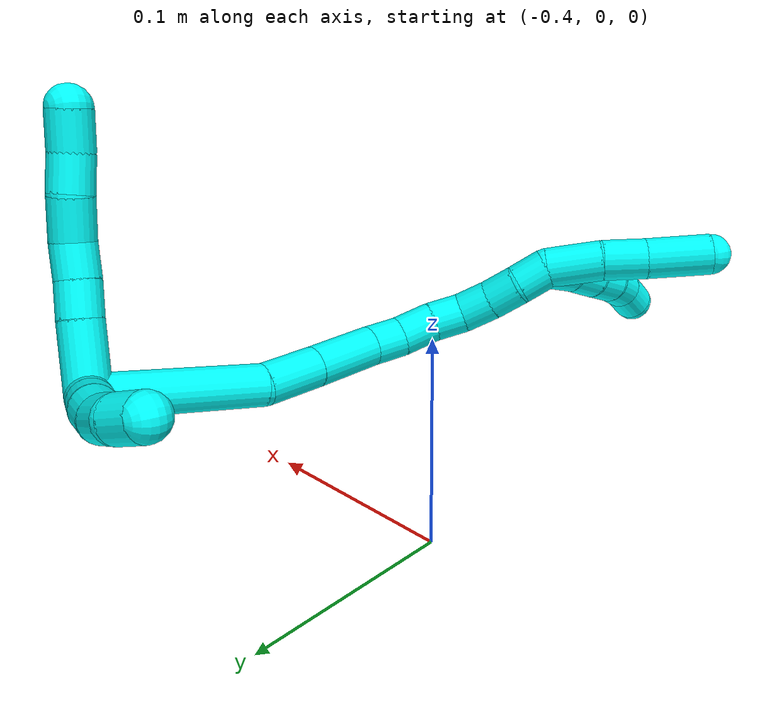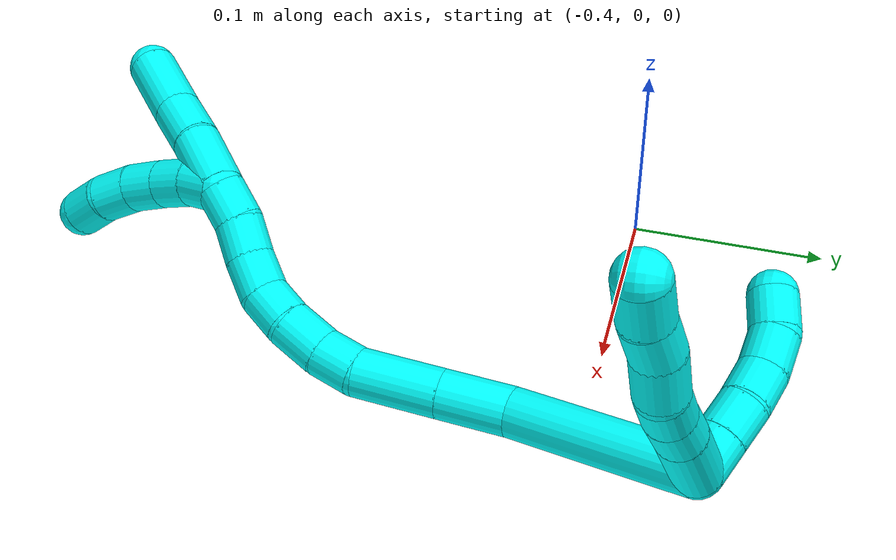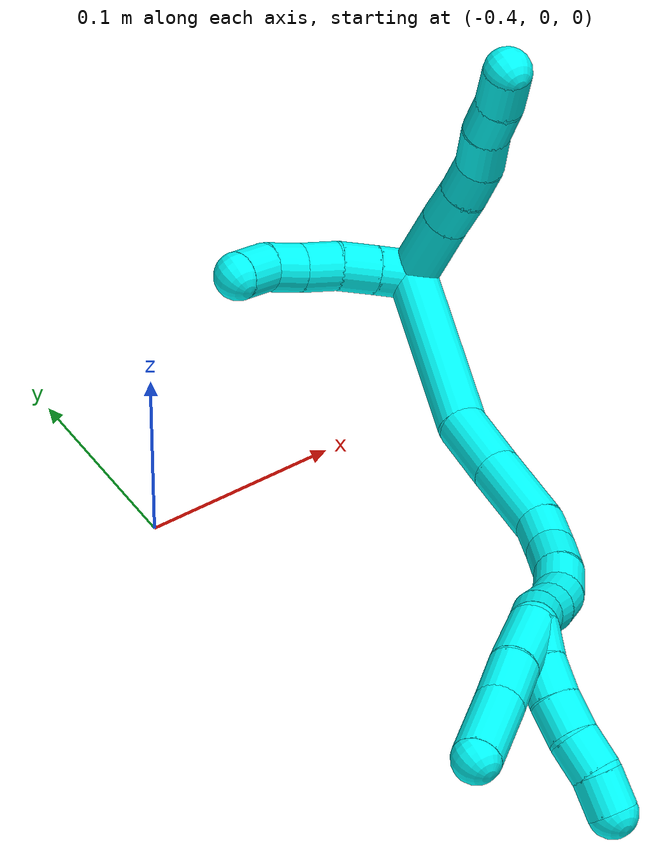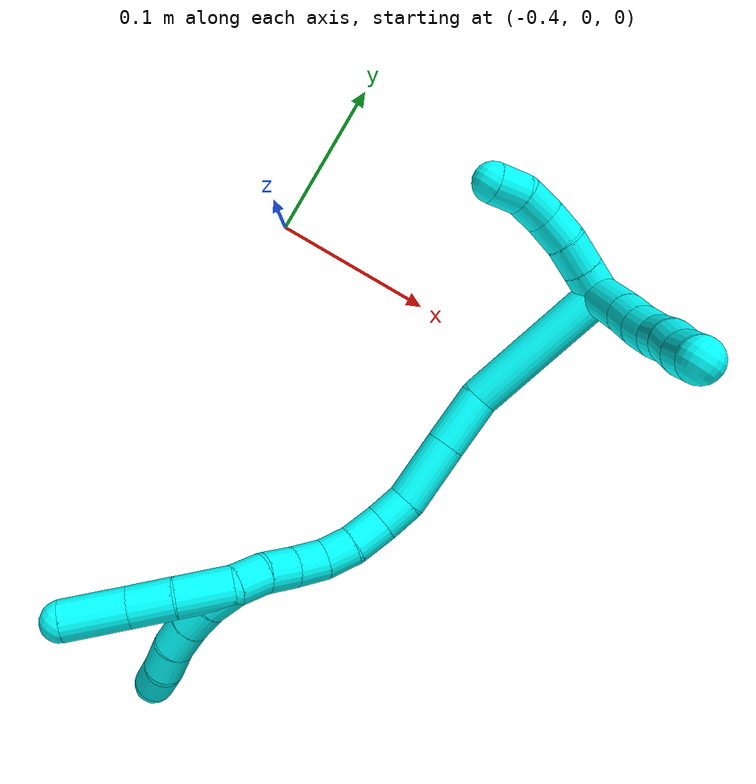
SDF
<sdf version="1.7">
 <world name="default">
  <model name="3">
   <static>0</static>
   <link name="3">
    <collision name="collision-cylinder-e_1_2_8">
     <pose>-0.006355 -0.019159 0.001639 1.48547 -0.3192 -0.293453</pose>
     <geometry><cylinder><radius>0.0125</radius><length>0.040503</length></cylinder></geometry>
     <surface>
      <friction><ode><mu>1.16</mu><mu2>1.16</mu2><slip1>0</slip1><slip2>0</slip2></ode></friction>
      <contact><ode><kp>1e+06</kp><kd>1</kd><max_vel>0</max_vel><min_depth>0.001</min_depth></ode></contact>
     </surface>
    </collision>
    <visual name="visual-cylinder-e_1_2_8">
     <pose>-0.006355 -0.019159 0.001639 1.48547 -0.3192 -0.293453</pose>
     <geometry><cylinder><radius>0.0125</radius><length>0.040503</length></cylinder></geometry>
     <material><ambient>0.003922 1 0.996078 1</ambient></material>
    </visual>
    <collision name="collision-cylinder-e_2_8_9">
     <pose>-0.015907 -0.048005 0.004541 1.44105 -0.316203 -0.278155</pose>
     <geometry><cylinder><radius>0.0125</radius><length>0.02056</length></cylinder></geometry>
     <surface>
      <friction><ode><mu>1.16</mu><mu2>1.16</mu2><slip1>0</slip1><slip2>0</slip2></ode></friction>
      <contact><ode><kp>1e+06</kp><kd>1</kd><max_vel>0</max_vel><min_depth>0.001</min_depth></ode></contact>
     </surface>
    </collision>
    <visual name="visual-cylinder-e_2_8_9">
     <pose>-0.015907 -0.048005 0.004541 1.44105 -0.316203 -0.278155</pose>
     <geometry><cylinder><radius>0.0125</radius><length>0.02056</length></cylinder></geometry>
     <material><ambient>0.003922 1 0.996078 1</ambient></material>
    </visual>
    <collision name="collision-cylinder-e_3_9_10">
     <pose>-0.022124 -0.067374 0.006317 1.51803 -0.302036 -0.286722</pose>
     <geometry><cylinder><radius>0.0125</radius><length>0.020308</length></cylinder></geometry>
     <surface>
      <friction><ode><mu>1.16</mu><mu2>1.16</mu2><slip1>0</slip1><slip2>0</slip2></ode></friction>
      <contact><ode><kp>1e+06</kp><kd>1</kd><max_vel>0</max_vel><min_depth>0.001</min_depth></ode></contact>
     </surface>
    </collision>
    <visual name="visual-cylinder-e_3_9_10">
     <pose>-0.022124 -0.067374 0.006317 1.51803 -0.302036 -0.286722</pose>
     <geometry><cylinder><radius>0.0125</radius><length>0.020308</length></cylinder></geometry>
     <material><ambient>0.003922 1 0.996078 1</ambient></material>
    </visual>
    <collision name="collision-cylinder-e_4_10_11">
     <pose>-0.02535 -0.089274 0.006866 1.56772 -0.016847 -0.016795</pose>
     <geometry><cylinder><radius>0.0125</radius><length>0.024441</length></cylinder></geometry>
     <surface>
      <friction><ode><mu>1.16</mu><mu2>1.16</mu2><slip1>0</slip1><slip2>0</slip2></ode></friction>
      <contact><ode><kp>1e+06</kp><kd>1</kd><max_vel>0</max_vel><min_depth>0.001</min_depth></ode></contact>
     </surface>
    </collision>
    <visual name="visual-cylinder-e_4_10_11">
     <pose>-0.02535 -0.089274 0.006866 1.56772 -0.016847 -0.016795</pose>
     <geometry><cylinder><radius>0.0125</radius><length>0.024441</length></cylinder></geometry>
     <material><ambient>0.003922 1 0.996078 1</ambient></material>
    </visual>
    <collision name="collision-cylinder-e_5_11_12">
     <pose>-0.027053 -0.112022 0.008295 1.43938 -0.140027 -0.122783</pose>
     <geometry><cylinder><radius>0.0125</radius><length>0.021452</length></cylinder></geometry>
     <surface>
      <friction><ode><mu>1.16</mu><mu2>1.16</mu2><slip1>0</slip1><slip2>0</slip2></ode></friction>
      <contact><ode><kp>1e+06</kp><kd>1</kd><max_vel>0</max_vel><min_depth>0.001</min_depth></ode></contact>
     </surface>
    </collision>
    <visual name="visual-cylinder-e_5_11_12">
     <pose>-0.027053 -0.112022 0.008295 1.43938 -0.140027 -0.122783</pose>
     <geometry><cylinder><radius>0.0125</radius><length>0.021452</length></cylinder></geometry>
     <material><ambient>0.003922 1 0.996078 1</ambient></material>
    </visual>
    <collision name="collision-cylinder-e_6_12_6">
     <pose>-0.029147 -0.133903 0.0098 1.56081 -0.052497 -0.051976</pose>
     <geometry><cylinder><radius>0.0125</radius><length>0.022736</length></cylinder></geometry>
     <surface>
      <friction><ode><mu>1.16</mu><mu2>1.16</mu2><slip1>0</slip1><slip2>0</slip2></ode></friction>
      <contact><ode><kp>1e+06</kp><kd>1</kd><max_vel>0</max_vel><min_depth>0.001</min_depth></ode></contact>
     </surface>
    </collision>
    <visual name="visual-cylinder-e_6_12_6">
     <pose>-0.029147 -0.133903 0.0098 1.56081 -0.052497 -0.051976</pose>
     <geometry><cylinder><radius>0.0125</radius><length>0.022736</length></cylinder></geometry>
     <material><ambient>0.003922 1 0.996078 1</ambient></material>
    </visual>
    <collision name="collision-cylinder-e_1_2_13">
     <pose>0.009015 -0.002162 -0.003749 2.61855 1.12327 2.33723</pose>
     <geometry><cylinder><radius>0.0125</radius><length>0.02</length></cylinder></geometry>
     <surface>
      <friction><ode><mu>1.16</mu><mu2>1.16</mu2><slip1>0</slip1><slip2>0</slip2></ode></friction>
      <contact><ode><kp>1e+06</kp><kd>1</kd><max_vel>0</max_vel><min_depth>0.001</min_depth></ode></contact>
     </surface>
    </collision>
    <visual name="visual-cylinder-e_1_2_13">
     <pose>0.009015 -0.002162 -0.003749 2.61855 1.12327 2.33723</pose>
     <geometry><cylinder><radius>0.0125</radius><length>0.02</length></cylinder></geometry>
     <material><ambient>0.003922 1 0.996078 1</ambient></material>
    </visual>
    <collision name="collision-cylinder-e_2_13_14">
     <pose>0.02709 -0.006321 -0.011231 2.65016 1.13359 2.39089</pose>
     <geometry><cylinder><radius>0.0125</radius><length>0.02</length></cylinder></geometry>
     <surface>
      <friction><ode><mu>1.16</mu><mu2>1.16</mu2><slip1>0</slip1><slip2>0</slip2></ode></friction>
      <contact><ode><kp>1e+06</kp><kd>1</kd><max_vel>0</max_vel><min_depth>0.001</min_depth></ode></contact>
     </surface>
    </collision>
    <visual name="visual-cylinder-e_2_13_14">
     <pose>0.02709 -0.006321 -0.011231 2.65016 1.13359 2.39089</pose>
     <geometry><cylinder><radius>0.0125</radius><length>0.02</length></cylinder></geometry>
     <material><ambient>0.003922 1 0.996078 1</ambient></material>
    </visual>
    <collision name="collision-cylinder-e_3_14_15">
     <pose>0.045756 -0.00938 -0.01753 2.74958 1.28936 2.62519</pose>
     <geometry><cylinder><radius>0.0125</radius><length>0.02</length></cylinder></geometry>
     <surface>
      <friction><ode><mu>1.16</mu><mu2>1.16</mu2><slip1>0</slip1><slip2>0</slip2></ode></friction>
      <contact><ode><kp>1e+06</kp><kd>1</kd><max_vel>0</max_vel><min_depth>0.001</min_depth></ode></contact>
     </surface>
    </collision>
    <visual name="visual-cylinder-e_3_14_15">
     <pose>0.045756 -0.00938 -0.01753 2.74958 1.28936 2.62519</pose>
     <geometry><cylinder><radius>0.0125</radius><length>0.02</length></cylinder></geometry>
     <material><ambient>0.003922 1 0.996078 1</ambient></material>
    </visual>
    <collision name="collision-cylinder-e_4_15_16">
     <pose>0.064715 -0.013734 -0.021398 1.94693 1.20894 1.58609</pose>
     <geometry><cylinder><radius>0.0125</radius><length>0.02</length></cylinder></geometry>
     <surface>
      <friction><ode><mu>1.16</mu><mu2>1.16</mu2><slip1>0</slip1><slip2>0</slip2></ode></friction>
      <contact><ode><kp>1e+06</kp><kd>1</kd><max_vel>0</max_vel><min_depth>0.001</min_depth></ode></contact>
     </surface>
    </collision>
    <visual name="visual-cylinder-e_4_15_16">
     <pose>0.064715 -0.013734 -0.021398 1.94693 1.20894 1.58609</pose>
     <geometry><cylinder><radius>0.0125</radius><length>0.02</length></cylinder></geometry>
     <material><ambient>0.003922 1 0.996078 1</ambient></material>
    </visual>
    <collision name="collision-cylinder-e_5_16_5">
     <pose>0.083369 -0.02008 -0.020659 0.982069 1.19485 0.697834</pose>
     <geometry><cylinder><radius>0.0125</radius><length>0.02</length></cylinder></geometry>
     <surface>
      <friction><ode><mu>1.16</mu><mu2>1.16</mu2><slip1>0</slip1><slip2>0</slip2></ode></friction>
      <contact><ode><kp>1e+06</kp><kd>1</kd><max_vel>0</max_vel><min_depth>0.001</min_depth></ode></contact>
     </surface>
    </collision>
    <visual name="visual-cylinder-e_5_16_5">
     <pose>0.083369 -0.02008 -0.020659 0.982069 1.19485 0.697834</pose>
     <geometry><cylinder><radius>0.0125</radius><length>0.02</length></cylinder></geometry>
     <material><ambient>0.003922 1 0.996078 1</ambient></material>
    </visual>
    <collision name="collision-cylinder-e_1_2_17">
     <pose>0.012255 0.002778 0.04661 -0.059527 0.256679 -0.007684</pose>
     <geometry><cylinder><radius>0.0125</radius><length>0.096549</length></cylinder></geometry>
     <surface>
      <friction><ode><mu>1.16</mu><mu2>1.16</mu2><slip1>0</slip1><slip2>0</slip2></ode></friction>
      <contact><ode><kp>1e+06</kp><kd>1</kd><max_vel>0</max_vel><min_depth>0.001</min_depth></ode></contact>
     </surface>
    </collision>
    <visual name="visual-cylinder-e_1_2_17">
     <pose>0.012255 0.002778 0.04661 -0.059527 0.256679 -0.007684</pose>
     <geometry><cylinder><radius>0.0125</radius><length>0.096549</length></cylinder></geometry>
     <material><ambient>0.003922 1 0.996078 1</ambient></material>
    </visual>
    <collision name="collision-cylinder-e_2_17_18">
     <pose>0.025325 0.003358 0.110967 0.123188 0.045496 0.002806</pose>
     <geometry><cylinder><radius>0.0125</radius><length>0.035801</length></cylinder></geometry>
     <surface>
      <friction><ode><mu>1.16</mu><mu2>1.16</mu2><slip1>0</slip1><slip2>0</slip2></ode></friction>
      <contact><ode><kp>1e+06</kp><kd>1</kd><max_vel>0</max_vel><min_depth>0.001</min_depth></ode></contact>
     </surface>
    </collision>
    <visual name="visual-cylinder-e_2_17_18">
     <pose>0.025325 0.003358 0.110967 0.123188 0.045496 0.002806</pose>
     <geometry><cylinder><radius>0.0125</radius><length>0.035801</length></cylinder></geometry>
     <material><ambient>0.003922 1 0.996078 1</ambient></material>
    </visual>
    <collision name="collision-cylinder-e_3_18_19">
     <pose>0.026916 -0.001799 0.149994 0.138221 0.036134 0.002501</pose>
     <geometry><cylinder><radius>0.0125</radius><length>0.043</length></cylinder></geometry>
     <surface>
      <friction><ode><mu>1.16</mu><mu2>1.16</mu2><slip1>0</slip1><slip2>0</slip2></ode></friction>
      <contact><ode><kp>1e+06</kp><kd>1</kd><max_vel>0</max_vel><min_depth>0.001</min_depth></ode></contact>
     </surface>
    </collision>
    <visual name="visual-cylinder-e_3_18_19">
     <pose>0.026916 -0.001799 0.149994 0.138221 0.036134 0.002501</pose>
     <geometry><cylinder><radius>0.0125</radius><length>0.043</length></cylinder></geometry>
     <material><ambient>0.003922 1 0.996078 1</ambient></material>
    </visual>
    <collision name="collision-cylinder-e_4_19_20">
     <pose>0.03072 -0.006914 0.181058 0.216773 0.293508 0.032166</pose>
     <geometry><cylinder><radius>0.0125</radius><length>0.02093</length></cylinder></geometry>
     <surface>
      <friction><ode><mu>1.16</mu><mu2>1.16</mu2><slip1>0</slip1><slip2>0</slip2></ode></friction>
      <contact><ode><kp>1e+06</kp><kd>1</kd><max_vel>0</max_vel><min_depth>0.001</min_depth></ode></contact>
     </surface>
    </collision>
    <visual name="visual-cylinder-e_4_19_20">
     <pose>0.03072 -0.006914 0.181058 0.216773 0.293508 0.032166</pose>
     <geometry><cylinder><radius>0.0125</radius><length>0.02093</length></cylinder></geometry>
     <material><ambient>0.003922 1 0.996078 1</ambient></material>
    </visual>
    <collision name="collision-cylinder-e_5_20_21">
     <pose>0.03796 -0.01335 0.200664 0.410977 0.374537 0.078949</pose>
     <geometry><cylinder><radius>0.0125</radius><length>0.023028</length></cylinder></geometry>
     <surface>
      <friction><ode><mu>1.16</mu><mu2>1.16</mu2><slip1>0</slip1><slip2>0</slip2></ode></friction>
      <contact><ode><kp>1e+06</kp><kd>1</kd><max_vel>0</max_vel><min_depth>0.001</min_depth></ode></contact>
     </surface>
    </collision>
    <visual name="visual-cylinder-e_5_20_21">
     <pose>0.03796 -0.01335 0.200664 0.410977 0.374537 0.078949</pose>
     <geometry><cylinder><radius>0.0125</radius><length>0.023028</length></cylinder></geometry>
     <material><ambient>0.003922 1 0.996078 1</ambient></material>
    </visual>
    <collision name="collision-cylinder-e_6_21_22">
     <pose>0.047598 -0.020738 0.218346 0.376515 0.570827 0.111686</pose>
     <geometry><cylinder><radius>0.0125</radius><length>0.020084</length></cylinder></geometry>
     <surface>
      <friction><ode><mu>1.16</mu><mu2>1.16</mu2><slip1>0</slip1><slip2>0</slip2></ode></friction>
      <contact><ode><kp>1e+06</kp><kd>1</kd><max_vel>0</max_vel><min_depth>0.001</min_depth></ode></contact>
     </surface>
    </collision>
    <visual name="visual-cylinder-e_6_21_22">
     <pose>0.047598 -0.020738 0.218346 0.376515 0.570827 0.111686</pose>
     <geometry><cylinder><radius>0.0125</radius><length>0.020084</length></cylinder></geometry>
     <material><ambient>0.003922 1 0.996078 1</ambient></material>
    </visual>
    <collision name="collision-cylinder-e_7_22_23">
     <pose>0.059926 -0.028984 0.231791 0.743728 0.737861 0.299326</pose>
     <geometry><cylinder><radius>0.0125</radius><length>0.02052</length></cylinder></geometry>
     <surface>
      <friction><ode><mu>1.16</mu><mu2>1.16</mu2><slip1>0</slip1><slip2>0</slip2></ode></friction>
      <contact><ode><kp>1e+06</kp><kd>1</kd><max_vel>0</max_vel><min_depth>0.001</min_depth></ode></contact>
     </surface>
    </collision>
    <visual name="visual-cylinder-e_7_22_23">
     <pose>0.059926 -0.028984 0.231791 0.743728 0.737861 0.299326</pose>
     <geometry><cylinder><radius>0.0125</radius><length>0.02052</length></cylinder></geometry>
     <material><ambient>0.003922 1 0.996078 1</ambient></material>
    </visual>
    <collision name="collision-cylinder-e_8_23_24">
     <pose>0.073662 -0.03991 0.2419 0.907447 0.74943 0.378985</pose>
     <geometry><cylinder><radius>0.0125</radius><length>0.020064</length></cylinder></geometry>
     <surface>
      <friction><ode><mu>1.16</mu><mu2>1.16</mu2><slip1>0</slip1><slip2>0</slip2></ode></friction>
      <contact><ode><kp>1e+06</kp><kd>1</kd><max_vel>0</max_vel><min_depth>0.001</min_depth></ode></contact>
     </surface>
    </collision>
    <visual name="visual-cylinder-e_8_23_24">
     <pose>0.073662 -0.03991 0.2419 0.907447 0.74943 0.378985</pose>
     <geometry><cylinder><radius>0.0125</radius><length>0.020064</length></cylinder></geometry>
     <material><ambient>0.003922 1 0.996078 1</ambient></material>
    </visual>
    <collision name="collision-cylinder-e_9_24_1">
     <pose>0.086094 -0.051334 0.252517 0.746407 0.593226 0.238207</pose>
     <geometry><cylinder><radius>0.0125</radius><length>0.020025</length></cylinder></geometry>
     <surface>
      <friction><ode><mu>1.16</mu><mu2>1.16</mu2><slip1>0</slip1><slip2>0</slip2></ode></friction>
      <contact><ode><kp>1e+06</kp><kd>1</kd><max_vel>0</max_vel><min_depth>0.001</min_depth></ode></contact>
     </surface>
    </collision>
    <visual name="visual-cylinder-e_9_24_1">
     <pose>0.086094 -0.051334 0.252517 0.746407 0.593226 0.238207</pose>
     <geometry><cylinder><radius>0.0125</radius><length>0.020025</length></cylinder></geometry>
     <material><ambient>0.003922 1 0.996078 1</ambient></material>
    </visual>
    <collision name="collision-cylinder-e_1_1_25">
     <pose>0.094877 -0.055281 0.267938 -0.179276 0.324274 -0.029401</pose>
     <geometry><cylinder><radius>0.0125</radius><length>0.02</length></cylinder></geometry>
     <surface>
      <friction><ode><mu>1.16</mu><mu2>1.16</mu2><slip1>0</slip1><slip2>0</slip2></ode></friction>
      <contact><ode><kp>1e+06</kp><kd>1</kd><max_vel>0</max_vel><min_depth>0.001</min_depth></ode></contact>
     </surface>
    </collision>
    <visual name="visual-cylinder-e_1_1_25">
     <pose>0.094877 -0.055281 0.267938 -0.179276 0.324274 -0.029401</pose>
     <geometry><cylinder><radius>0.0125</radius><length>0.02</length></cylinder></geometry>
     <material><ambient>0.003922 1 0.996078 1</ambient></material>
    </visual>
    <collision name="collision-cylinder-e_2_25_26">
     <pose>0.099379 -0.050763 0.286766 -0.289263 0.13193 -0.019243</pose>
     <geometry><cylinder><radius>0.0125</radius><length>0.02</length></cylinder></geometry>
     <surface>
      <friction><ode><mu>1.16</mu><mu2>1.16</mu2><slip1>0</slip1><slip2>0</slip2></ode></friction>
      <contact><ode><kp>1e+06</kp><kd>1</kd><max_vel>0</max_vel><min_depth>0.001</min_depth></ode></contact>
     </surface>
    </collision>
    <visual name="visual-cylinder-e_2_25_26">
     <pose>0.099379 -0.050763 0.286766 -0.289263 0.13193 -0.019243</pose>
     <geometry><cylinder><radius>0.0125</radius><length>0.02</length></cylinder></geometry>
     <material><ambient>0.003922 1 0.996078 1</ambient></material>
    </visual>
    <collision name="collision-cylinder-e_3_26_27">
     <pose>0.100958 -0.045212 0.305886 -0.275877 0.026392 -0.003664</pose>
     <geometry><cylinder><radius>0.0125</radius><length>0.02</length></cylinder></geometry>
     <surface>
      <friction><ode><mu>1.16</mu><mu2>1.16</mu2><slip1>0</slip1><slip2>0</slip2></ode></friction>
      <contact><ode><kp>1e+06</kp><kd>1</kd><max_vel>0</max_vel><min_depth>0.001</min_depth></ode></contact>
     </surface>
    </collision>
    <visual name="visual-cylinder-e_3_26_27">
     <pose>0.100958 -0.045212 0.305886 -0.275877 0.026392 -0.003664</pose>
     <geometry><cylinder><radius>0.0125</radius><length>0.02</length></cylinder></geometry>
     <material><ambient>0.003922 1 0.996078 1</ambient></material>
    </visual>
    <collision name="collision-cylinder-e_4_27_28">
     <pose>0.099921 -0.038897 0.324746 -0.370786 -0.130465 0.024502</pose>
     <geometry><cylinder><radius>0.0125</radius><length>0.02</length></cylinder></geometry>
     <surface>
      <friction><ode><mu>1.16</mu><mu2>1.16</mu2><slip1>0</slip1><slip2>0</slip2></ode></friction>
      <contact><ode><kp>1e+06</kp><kd>1</kd><max_vel>0</max_vel><min_depth>0.001</min_depth></ode></contact>
     </surface>
    </collision>
    <visual name="visual-cylinder-e_4_27_28">
     <pose>0.099921 -0.038897 0.324746 -0.370786 -0.130465 0.024502</pose>
     <geometry><cylinder><radius>0.0125</radius><length>0.02</length></cylinder></geometry>
     <material><ambient>0.003922 1 0.996078 1</ambient></material>
    </visual>
    <collision name="collision-cylinder-e_5_28_4">
     <pose>0.098245 -0.029647 0.342225 -0.601766 -0.037546 0.011652</pose>
     <geometry><cylinder><radius>0.0125</radius><length>0.02</length></cylinder></geometry>
     <surface>
      <friction><ode><mu>1.16</mu><mu2>1.16</mu2><slip1>0</slip1><slip2>0</slip2></ode></friction>
      <contact><ode><kp>1e+06</kp><kd>1</kd><max_vel>0</max_vel><min_depth>0.001</min_depth></ode></contact>
     </surface>
    </collision>
    <visual name="visual-cylinder-e_5_28_4">
     <pose>0.098245 -0.029647 0.342225 -0.601766 -0.037546 0.011652</pose>
     <geometry><cylinder><radius>0.0125</radius><length>0.02</length></cylinder></geometry>
     <material><ambient>0.003922 1 0.996078 1</ambient></material>
    </visual>
    <collision name="collision-cylinder-e_1_1_29">
     <pose>0.104177 -0.060691 0.269667 0.32455 0.819394 0.141954</pose>
     <geometry><cylinder><radius>0.0125</radius><length>0.034175</length></cylinder></geometry>
     <surface>
      <friction><ode><mu>1.16</mu><mu2>1.16</mu2><slip1>0</slip1><slip2>0</slip2></ode></friction>
      <contact><ode><kp>1e+06</kp><kd>1</kd><max_vel>0</max_vel><min_depth>0.001</min_depth></ode></contact>
     </surface>
    </collision>
    <visual name="visual-cylinder-e_1_1_29">
     <pose>0.104177 -0.060691 0.269667 0.32455 0.819394 0.141954</pose>
     <geometry><cylinder><radius>0.0125</radius><length>0.034175</length></cylinder></geometry>
     <material><ambient>0.003922 1 0.996078 1</ambient></material>
    </visual>
    <collision name="collision-cylinder-e_2_29_30">
     <pose>0.126293 -0.065804 0.289899 0.150713 0.803788 0.064157</pose>
     <geometry><cylinder><radius>0.0125</radius><length>0.026748</length></cylinder></geometry>
     <surface>
      <friction><ode><mu>1.16</mu><mu2>1.16</mu2><slip1>0</slip1><slip2>0</slip2></ode></friction>
      <contact><ode><kp>1e+06</kp><kd>1</kd><max_vel>0</max_vel><min_depth>0.001</min_depth></ode></contact>
     </surface>
    </collision>
    <visual name="visual-cylinder-e_2_29_30">
     <pose>0.126293 -0.065804 0.289899 0.150713 0.803788 0.064157</pose>
     <geometry><cylinder><radius>0.0125</radius><length>0.026748</length></cylinder></geometry>
     <material><ambient>0.003922 1 0.996078 1</ambient></material>
    </visual>
    <collision name="collision-cylinder-e_3_30_3">
     <pose>0.150151 -0.069936 0.312182 0.205973 0.815782 0.089263</pose>
     <geometry><cylinder><radius>0.0125</radius><length>0.039077</length></cylinder></geometry>
     <surface>
      <friction><ode><mu>1.16</mu><mu2>1.16</mu2><slip1>0</slip1><slip2>0</slip2></ode></friction>
      <contact><ode><kp>1e+06</kp><kd>1</kd><max_vel>0</max_vel><min_depth>0.001</min_depth></ode></contact>
     </surface>
    </collision>
    <visual name="visual-cylinder-e_3_30_3">
     <pose>0.150151 -0.069936 0.312182 0.205973 0.815782 0.089263</pose>
     <geometry><cylinder><radius>0.0125</radius><length>0.039077</length></cylinder></geometry>
     <material><ambient>0.003922 1 0.996078 1</ambient></material>
    </visual>
    <collision name="collision-sphere-3">
     <pose>0.16438 -0.072675 0.325289 0 -0 0</pose>
     <geometry><sphere><radius>0.0125</radius></sphere></geometry>
     <surface>
      <friction><ode><mu>1.16</mu><mu2>1.16</mu2><slip1>0</slip1><slip2>0</slip2></ode></friction>
      <contact><ode><kp>1e+06</kp><kd>1</kd><max_vel>0</max_vel><min_depth>0.001</min_depth></ode></contact>
     </surface>
    </collision>
    <visual name="visual-sphere-3">
     <pose>0.16438 -0.072675 0.325289 0 -0 0</pose>
     <geometry><sphere><radius>0.0125</radius></sphere></geometry>
     <material><ambient>0.003922 1 0.996078 1</ambient></material>
    </visual>
    <collision name="collision-sphere-30">
     <pose>0.135922 -0.067198 0.299075 0 -0 0</pose>
     <geometry><sphere><radius>0.0125</radius></sphere></geometry>
     <surface>
      <friction><ode><mu>1.16</mu><mu2>1.16</mu2><slip1>0</slip1><slip2>0</slip2></ode></friction>
      <contact><ode><kp>1e+06</kp><kd>1</kd><max_vel>0</max_vel><min_depth>0.001</min_depth></ode></contact>
     </surface>
    </collision>
    <visual name="visual-sphere-30">
     <pose>0.135922 -0.067198 0.299075 0 -0 0</pose>
     <geometry><sphere><radius>0.0125</radius></sphere></geometry>
     <material><ambient>0.003922 1 0.996078 1</ambient></material>
    </visual>
    <collision name="collision-sphere-29">
     <pose>0.116664 -0.064411 0.280723 0 -0 0</pose>
     <geometry><sphere><radius>0.0125</radius></sphere></geometry>
     <surface>
      <friction><ode><mu>1.16</mu><mu2>1.16</mu2><slip1>0</slip1><slip2>0</slip2></ode></friction>
      <contact><ode><kp>1e+06</kp><kd>1</kd><max_vel>0</max_vel><min_depth>0.001</min_depth></ode></contact>
     </surface>
    </collision>
    <visual name="visual-sphere-29">
     <pose>0.116664 -0.064411 0.280723 0 -0 0</pose>
     <geometry><sphere><radius>0.0125</radius></sphere></geometry>
     <material><ambient>0.003922 1 0.996078 1</ambient></material>
    </visual>
    <collision name="collision-sphere-4">
     <pose>0.097869 -0.02399 0.350462 0 -0 0</pose>
     <geometry><sphere><radius>0.0125</radius></sphere></geometry>
     <surface>
      <friction><ode><mu>1.16</mu><mu2>1.16</mu2><slip1>0</slip1><slip2>0</slip2></ode></friction>
      <contact><ode><kp>1e+06</kp><kd>1</kd><max_vel>0</max_vel><min_depth>0.001</min_depth></ode></contact>
     </surface>
    </collision>
    <visual name="visual-sphere-4">
     <pose>0.097869 -0.02399 0.350462 0 -0 0</pose>
     <geometry><sphere><radius>0.0125</radius></sphere></geometry>
     <material><ambient>0.003922 1 0.996078 1</ambient></material>
    </visual>
    <collision name="collision-sphere-28">
     <pose>0.09862 -0.035304 0.333987 0 -0 0</pose>
     <geometry><sphere><radius>0.0125</radius></sphere></geometry>
     <surface>
      <friction><ode><mu>1.16</mu><mu2>1.16</mu2><slip1>0</slip1><slip2>0</slip2></ode></friction>
      <contact><ode><kp>1e+06</kp><kd>1</kd><max_vel>0</max_vel><min_depth>0.001</min_depth></ode></contact>
     </surface>
    </collision>
    <visual name="visual-sphere-28">
     <pose>0.09862 -0.035304 0.333987 0 -0 0</pose>
     <geometry><sphere><radius>0.0125</radius></sphere></geometry>
     <material><ambient>0.003922 1 0.996078 1</ambient></material>
    </visual>
    <collision name="collision-sphere-27">
     <pose>0.101222 -0.042489 0.315505 0 -0 0</pose>
     <geometry><sphere><radius>0.0125</radius></sphere></geometry>
     <surface>
      <friction><ode><mu>1.16</mu><mu2>1.16</mu2><slip1>0</slip1><slip2>0</slip2></ode></friction>
      <contact><ode><kp>1e+06</kp><kd>1</kd><max_vel>0</max_vel><min_depth>0.001</min_depth></ode></contact>
     </surface>
    </collision>
    <visual name="visual-sphere-27">
     <pose>0.101222 -0.042489 0.315505 0 -0 0</pose>
     <geometry><sphere><radius>0.0125</radius></sphere></geometry>
     <material><ambient>0.003922 1 0.996078 1</ambient></material>
    </visual>
    <collision name="collision-sphere-26">
     <pose>0.100694 -0.047935 0.296268 0 -0 0</pose>
     <geometry><sphere><radius>0.0125</radius></sphere></geometry>
     <surface>
      <friction><ode><mu>1.16</mu><mu2>1.16</mu2><slip1>0</slip1><slip2>0</slip2></ode></friction>
      <contact><ode><kp>1e+06</kp><kd>1</kd><max_vel>0</max_vel><min_depth>0.001</min_depth></ode></contact>
     </surface>
    </collision>
    <visual name="visual-sphere-26">
     <pose>0.100694 -0.047935 0.296268 0 -0 0</pose>
     <geometry><sphere><radius>0.0125</radius></sphere></geometry>
     <material><ambient>0.003922 1 0.996078 1</ambient></material>
    </visual>
    <collision name="collision-sphere-25">
     <pose>0.098063 -0.053591 0.277265 0 -0 0</pose>
     <geometry><sphere><radius>0.0125</radius></sphere></geometry>
     <surface>
      <friction><ode><mu>1.16</mu><mu2>1.16</mu2><slip1>0</slip1><slip2>0</slip2></ode></friction>
      <contact><ode><kp>1e+06</kp><kd>1</kd><max_vel>0</max_vel><min_depth>0.001</min_depth></ode></contact>
     </surface>
    </collision>
    <visual name="visual-sphere-25">
     <pose>0.098063 -0.053591 0.277265 0 -0 0</pose>
     <geometry><sphere><radius>0.0125</radius></sphere></geometry>
     <material><ambient>0.003922 1 0.996078 1</ambient></material>
    </visual>
    <collision name="collision-sphere-1">
     <pose>0.091691 -0.056971 0.258611 0 -0 0</pose>
     <geometry><sphere><radius>0.0125</radius></sphere></geometry>
     <surface>
      <friction><ode><mu>1.16</mu><mu2>1.16</mu2><slip1>0</slip1><slip2>0</slip2></ode></friction>
      <contact><ode><kp>1e+06</kp><kd>1</kd><max_vel>0</max_vel><min_depth>0.001</min_depth></ode></contact>
     </surface>
    </collision>
    <visual name="visual-sphere-1">
     <pose>0.091691 -0.056971 0.258611 0 -0 0</pose>
     <geometry><sphere><radius>0.0125</radius></sphere></geometry>
     <material><ambient>0.003922 1 0.996078 1</ambient></material>
    </visual>
    <collision name="collision-sphere-24">
     <pose>0.080496 -0.045697 0.246422 0 -0 0</pose>
     <geometry><sphere><radius>0.0125</radius></sphere></geometry>
     <surface>
      <friction><ode><mu>1.16</mu><mu2>1.16</mu2><slip1>0</slip1><slip2>0</slip2></ode></friction>
      <contact><ode><kp>1e+06</kp><kd>1</kd><max_vel>0</max_vel><min_depth>0.001</min_depth></ode></contact>
     </surface>
    </collision>
    <visual name="visual-sphere-24">
     <pose>0.080496 -0.045697 0.246422 0 -0 0</pose>
     <geometry><sphere><radius>0.0125</radius></sphere></geometry>
     <material><ambient>0.003922 1 0.996078 1</ambient></material>
    </visual>
    <collision name="collision-sphere-23">
     <pose>0.066828 -0.034124 0.237377 0 -0 0</pose>
     <geometry><sphere><radius>0.0125</radius></sphere></geometry>
     <surface>
      <friction><ode><mu>1.16</mu><mu2>1.16</mu2><slip1>0</slip1><slip2>0</slip2></ode></friction>
      <contact><ode><kp>1e+06</kp><kd>1</kd><max_vel>0</max_vel><min_depth>0.001</min_depth></ode></contact>
     </surface>
    </collision>
    <visual name="visual-sphere-23">
     <pose>0.066828 -0.034124 0.237377 0 -0 0</pose>
     <geometry><sphere><radius>0.0125</radius></sphere></geometry>
     <material><ambient>0.003922 1 0.996078 1</ambient></material>
    </visual>
    <collision name="collision-sphere-22">
     <pose>0.053024 -0.023844 0.226204 0 -0 0</pose>
     <geometry><sphere><radius>0.0125</radius></sphere></geometry>
     <surface>
      <friction><ode><mu>1.16</mu><mu2>1.16</mu2><slip1>0</slip1><slip2>0</slip2></ode></friction>
      <contact><ode><kp>1e+06</kp><kd>1</kd><max_vel>0</max_vel><min_depth>0.001</min_depth></ode></contact>
     </surface>
    </collision>
    <visual name="visual-sphere-22">
     <pose>0.053024 -0.023844 0.226204 0 -0 0</pose>
     <geometry><sphere><radius>0.0125</radius></sphere></geometry>
     <material><ambient>0.003922 1 0.996078 1</ambient></material>
    </visual>
    <collision name="collision-sphere-21">
     <pose>0.042172 -0.017631 0.210487 0 -0 0</pose>
     <geometry><sphere><radius>0.0125</radius></sphere></geometry>
     <surface>
      <friction><ode><mu>1.16</mu><mu2>1.16</mu2><slip1>0</slip1><slip2>0</slip2></ode></friction>
      <contact><ode><kp>1e+06</kp><kd>1</kd><max_vel>0</max_vel><min_depth>0.001</min_depth></ode></contact>
     </surface>
    </collision>
    <visual name="visual-sphere-21">
     <pose>0.042172 -0.017631 0.210487 0 -0 0</pose>
     <geometry><sphere><radius>0.0125</radius></sphere></geometry>
     <material><ambient>0.003922 1 0.996078 1</ambient></material>
    </visual>
    <collision name="collision-sphere-12">
     <pose>-0.02855 -0.122552 0.009687 0 -0 0</pose>
     <geometry><sphere><radius>0.0125</radius></sphere></geometry>
     <surface>
      <friction><ode><mu>1.16</mu><mu2>1.16</mu2><slip1>0</slip1><slip2>0</slip2></ode></friction>
      <contact><ode><kp>1e+06</kp><kd>1</kd><max_vel>0</max_vel><min_depth>0.001</min_depth></ode></contact>
     </surface>
    </collision>
    <visual name="visual-sphere-12">
     <pose>-0.02855 -0.122552 0.009687 0 -0 0</pose>
     <geometry><sphere><radius>0.0125</radius></sphere></geometry>
     <material><ambient>0.003922 1 0.996078 1</ambient></material>
    </visual>
    <collision name="collision-sphere-11">
     <pose>-0.025556 -0.101493 0.006904 0 -0 0</pose>
     <geometry><sphere><radius>0.0125</radius></sphere></geometry>
     <surface>
      <friction><ode><mu>1.16</mu><mu2>1.16</mu2><slip1>0</slip1><slip2>0</slip2></ode></friction>
      <contact><ode><kp>1e+06</kp><kd>1</kd><max_vel>0</max_vel><min_depth>0.001</min_depth></ode></contact>
     </surface>
    </collision>
    <visual name="visual-sphere-11">
     <pose>-0.025556 -0.101493 0.006904 0 -0 0</pose>
     <geometry><sphere><radius>0.0125</radius></sphere></geometry>
     <material><ambient>0.003922 1 0.996078 1</ambient></material>
    </visual>
    <collision name="collision-sphere-10">
     <pose>-0.025144 -0.077055 0.006828 0 -0 0</pose>
     <geometry><sphere><radius>0.0125</radius></sphere></geometry>
     <surface>
      <friction><ode><mu>1.16</mu><mu2>1.16</mu2><slip1>0</slip1><slip2>0</slip2></ode></friction>
      <contact><ode><kp>1e+06</kp><kd>1</kd><max_vel>0</max_vel><min_depth>0.001</min_depth></ode></contact>
     </surface>
    </collision>
    <visual name="visual-sphere-10">
     <pose>-0.025144 -0.077055 0.006828 0 -0 0</pose>
     <geometry><sphere><radius>0.0125</radius></sphere></geometry>
     <material><ambient>0.003922 1 0.996078 1</ambient></material>
    </visual>
    <collision name="collision-sphere-9">
     <pose>-0.019103 -0.057694 0.005806 0 -0 0</pose>
     <geometry><sphere><radius>0.0125</radius></sphere></geometry>
     <surface>
      <friction><ode><mu>1.16</mu><mu2>1.16</mu2><slip1>0</slip1><slip2>0</slip2></ode></friction>
      <contact><ode><kp>1e+06</kp><kd>1</kd><max_vel>0</max_vel><min_depth>0.001</min_depth></ode></contact>
     </surface>
    </collision>
    <visual name="visual-sphere-9">
     <pose>-0.019103 -0.057694 0.005806 0 -0 0</pose>
     <geometry><sphere><radius>0.0125</radius></sphere></geometry>
     <material><ambient>0.003922 1 0.996078 1</ambient></material>
    </visual>
    <collision name="collision-sphere-2">
     <geometry><sphere><radius>0.0125</radius></sphere></geometry>
     <surface>
      <friction><ode><mu>1.16</mu><mu2>1.16</mu2><slip1>0</slip1><slip2>0</slip2></ode></friction>
      <contact><ode><kp>1e+06</kp><kd>1</kd><max_vel>0</max_vel><min_depth>0.001</min_depth></ode></contact>
     </surface>
    </collision>
    <visual name="visual-sphere-2">
     <geometry><sphere><radius>0.0125</radius></sphere></geometry>
     <material><ambient>0.003922 1 0.996078 1</ambient></material>
    </visual>
    <collision name="collision-sphere-19">
     <pose>0.027692 -0.00476 0.171275 0 -0 0</pose>
     <geometry><sphere><radius>0.0125</radius></sphere></geometry>
     <surface>
      <friction><ode><mu>1.16</mu><mu2>1.16</mu2><slip1>0</slip1><slip2>0</slip2></ode></friction>
      <contact><ode><kp>1e+06</kp><kd>1</kd><max_vel>0</max_vel><min_depth>0.001</min_depth></ode></contact>
     </surface>
    </collision>
    <visual name="visual-sphere-19">
     <pose>0.027692 -0.00476 0.171275 0 -0 0</pose>
     <geometry><sphere><radius>0.0125</radius></sphere></geometry>
     <material><ambient>0.003922 1 0.996078 1</ambient></material>
    </visual>
    <collision name="collision-sphere-8">
     <pose>-0.01271 -0.038317 0.003277 0 -0 0</pose>
     <geometry><sphere><radius>0.0125</radius></sphere></geometry>
     <surface>
      <friction><ode><mu>1.16</mu><mu2>1.16</mu2><slip1>0</slip1><slip2>0</slip2></ode></friction>
      <contact><ode><kp>1e+06</kp><kd>1</kd><max_vel>0</max_vel><min_depth>0.001</min_depth></ode></contact>
     </surface>
    </collision>
    <visual name="visual-sphere-8">
     <pose>-0.01271 -0.038317 0.003277 0 -0 0</pose>
     <geometry><sphere><radius>0.0125</radius></sphere></geometry>
     <material><ambient>0.003922 1 0.996078 1</ambient></material>
    </visual>
    <collision name="collision-sphere-6">
     <pose>-0.029743 -0.145255 0.009914 0 -0 0</pose>
     <geometry><sphere><radius>0.0125</radius></sphere></geometry>
     <surface>
      <friction><ode><mu>1.16</mu><mu2>1.16</mu2><slip1>0</slip1><slip2>0</slip2></ode></friction>
      <contact><ode><kp>1e+06</kp><kd>1</kd><max_vel>0</max_vel><min_depth>0.001</min_depth></ode></contact>
     </surface>
    </collision>
    <visual name="visual-sphere-6">
     <pose>-0.029743 -0.145255 0.009914 0 -0 0</pose>
     <geometry><sphere><radius>0.0125</radius></sphere></geometry>
     <material><ambient>0.003922 1 0.996078 1</ambient></material>
    </visual>
    <collision name="collision-sphere-13">
     <pose>0.01803 -0.004323 -0.007498 0 -0 0</pose>
     <geometry><sphere><radius>0.0125</radius></sphere></geometry>
     <surface>
      <friction><ode><mu>1.16</mu><mu2>1.16</mu2><slip1>0</slip1><slip2>0</slip2></ode></friction>
      <contact><ode><kp>1e+06</kp><kd>1</kd><max_vel>0</max_vel><min_depth>0.001</min_depth></ode></contact>
     </surface>
    </collision>
    <visual name="visual-sphere-13">
     <pose>0.01803 -0.004323 -0.007498 0 -0 0</pose>
     <geometry><sphere><radius>0.0125</radius></sphere></geometry>
     <material><ambient>0.003922 1 0.996078 1</ambient></material>
    </visual>
    <collision name="collision-sphere-14">
     <pose>0.036149 -0.008319 -0.014964 0 -0 0</pose>
     <geometry><sphere><radius>0.0125</radius></sphere></geometry>
     <surface>
      <friction><ode><mu>1.16</mu><mu2>1.16</mu2><slip1>0</slip1><slip2>0</slip2></ode></friction>
      <contact><ode><kp>1e+06</kp><kd>1</kd><max_vel>0</max_vel><min_depth>0.001</min_depth></ode></contact>
     </surface>
    </collision>
    <visual name="visual-sphere-14">
     <pose>0.036149 -0.008319 -0.014964 0 -0 0</pose>
     <geometry><sphere><radius>0.0125</radius></sphere></geometry>
     <material><ambient>0.003922 1 0.996078 1</ambient></material>
    </visual>
    <collision name="collision-sphere-15">
     <pose>0.055362 -0.010442 -0.020097 0 -0 0</pose>
     <geometry><sphere><radius>0.0125</radius></sphere></geometry>
     <surface>
      <friction><ode><mu>1.16</mu><mu2>1.16</mu2><slip1>0</slip1><slip2>0</slip2></ode></friction>
      <contact><ode><kp>1e+06</kp><kd>1</kd><max_vel>0</max_vel><min_depth>0.001</min_depth></ode></contact>
     </surface>
    </collision>
    <visual name="visual-sphere-15">
     <pose>0.055362 -0.010442 -0.020097 0 -0 0</pose>
     <geometry><sphere><radius>0.0125</radius></sphere></geometry>
     <material><ambient>0.003922 1 0.996078 1</ambient></material>
    </visual>
    <collision name="collision-sphere-16">
     <pose>0.074067 -0.017027 -0.022698 0 -0 0</pose>
     <geometry><sphere><radius>0.0125</radius></sphere></geometry>
     <surface>
      <friction><ode><mu>1.16</mu><mu2>1.16</mu2><slip1>0</slip1><slip2>0</slip2></ode></friction>
      <contact><ode><kp>1e+06</kp><kd>1</kd><max_vel>0</max_vel><min_depth>0.001</min_depth></ode></contact>
     </surface>
    </collision>
    <visual name="visual-sphere-16">
     <pose>0.074067 -0.017027 -0.022698 0 -0 0</pose>
     <geometry><sphere><radius>0.0125</radius></sphere></geometry>
     <material><ambient>0.003922 1 0.996078 1</ambient></material>
    </visual>
    <collision name="collision-sphere-5">
     <pose>0.09267 -0.023134 -0.01862 0 -0 0</pose>
     <geometry><sphere><radius>0.0125</radius></sphere></geometry>
     <surface>
      <friction><ode><mu>1.16</mu><mu2>1.16</mu2><slip1>0</slip1><slip2>0</slip2></ode></friction>
      <contact><ode><kp>1e+06</kp><kd>1</kd><max_vel>0</max_vel><min_depth>0.001</min_depth></ode></contact>
     </surface>
    </collision>
    <visual name="visual-sphere-5">
     <pose>0.09267 -0.023134 -0.01862 0 -0 0</pose>
     <geometry><sphere><radius>0.0125</radius></sphere></geometry>
     <material><ambient>0.003922 1 0.996078 1</ambient></material>
    </visual>
    <collision name="collision-sphere-17">
     <pose>0.024511 0.005556 0.09322 0 -0 0</pose>
     <geometry><sphere><radius>0.0125</radius></sphere></geometry>
     <surface>
      <friction><ode><mu>1.16</mu><mu2>1.16</mu2><slip1>0</slip1><slip2>0</slip2></ode></friction>
      <contact><ode><kp>1e+06</kp><kd>1</kd><max_vel>0</max_vel><min_depth>0.001</min_depth></ode></contact>
     </surface>
    </collision>
    <visual name="visual-sphere-17">
     <pose>0.024511 0.005556 0.09322 0 -0 0</pose>
     <geometry><sphere><radius>0.0125</radius></sphere></geometry>
     <material><ambient>0.003922 1 0.996078 1</ambient></material>
    </visual>
    <collision name="collision-sphere-18">
     <pose>0.026139 0.001161 0.128713 0 -0 0</pose>
     <geometry><sphere><radius>0.0125</radius></sphere></geometry>
     <surface>
      <friction><ode><mu>1.16</mu><mu2>1.16</mu2><slip1>0</slip1><slip2>0</slip2></ode></friction>
      <contact><ode><kp>1e+06</kp><kd>1</kd><max_vel>0</max_vel><min_depth>0.001</min_depth></ode></contact>
     </surface>
    </collision>
    <visual name="visual-sphere-18">
     <pose>0.026139 0.001161 0.128713 0 -0 0</pose>
     <geometry><sphere><radius>0.0125</radius></sphere></geometry>
     <material><ambient>0.003922 1 0.996078 1</ambient></material>
    </visual>
    <collision name="collision-sphere-20">
     <pose>0.033748 -0.009069 0.19084 0 -0 0</pose>
     <geometry><sphere><radius>0.0125</radius></sphere></geometry>
     <surface>
      <friction><ode><mu>1.16</mu><mu2>1.16</mu2><slip1>0</slip1><slip2>0</slip2></ode></friction>
      <contact><ode><kp>1e+06</kp><kd>1</kd><max_vel>0</max_vel><min_depth>0.001</min_depth></ode></contact>
     </surface>
    </collision>
    <visual name="visual-sphere-20">
     <pose>0.033748 -0.009069 0.19084 0 -0 0</pose>
     <geometry><sphere><radius>0.0125</radius></sphere></geometry>
     <material><ambient>0.003922 1 0.996078 1</ambient></material>
    </visual>
    <inertial>
     <pose>0.046037 -0.034318 0.135294 0 -0 0</pose>
     <mass>0.75</mass>
     <inertia>
      <ixx>0.000147</ixx>
      <ixy>0</ixy>
      <ixz>0</ixz>
      <iyy>0.000114</iyy>
      <iyz>0</iyz>
      <izz>1.1e-05</izz>
     </inertia>
    </inertial>
   </link>
   <pose>-0.210924 0.05824 0.028406 -1.69551 -0.047314 3.09621</pose>
  </model>
 </world>
</sdf>
